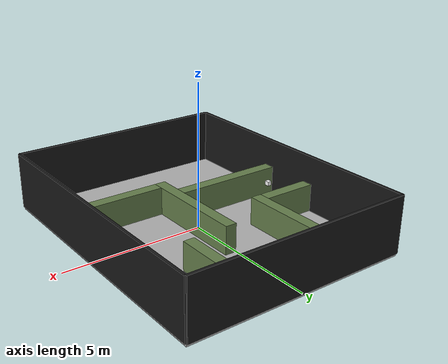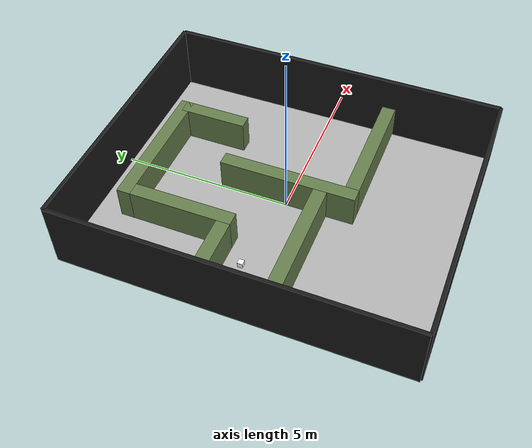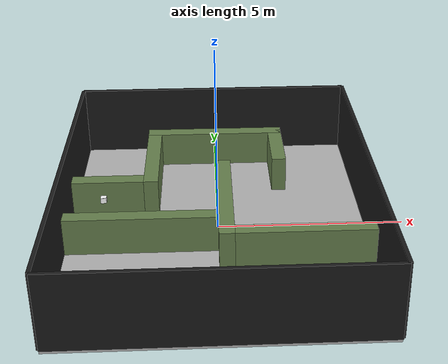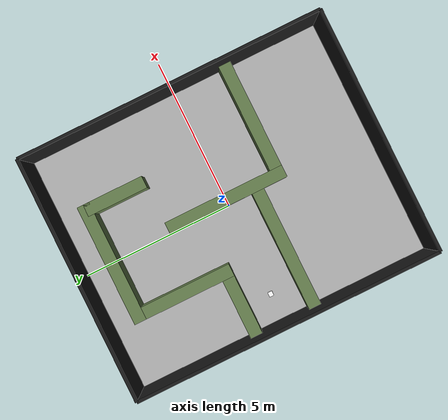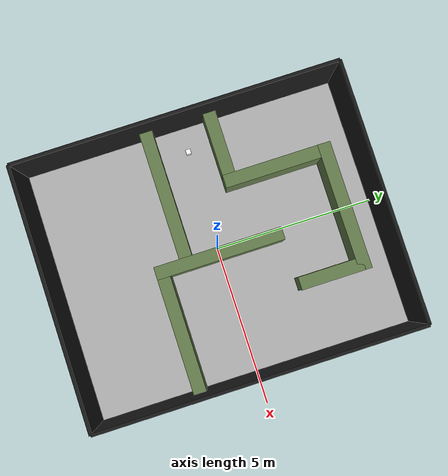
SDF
<?xml version="1.0" ?>
<sdf version="1.5">
  <world name="my_custom_world">

    <physics name='default_physics' default='0' type='ode'>
      <gravity>0 0 -9.81</gravity>
      <ode>
        <solver>
          <type>quick</type>
          <iters>10</iters>
          <sor>1.3</sor>
          <use_dynamic_moi_rescaling>0</use_dynamic_moi_rescaling>
        </solver>
        <constraints>
          <cfm>0</cfm>
          <erp>0.2</erp>
          <contact_max_correcting_vel>100</contact_max_correcting_vel>
          <contact_surface_layer>0.001</contact_surface_layer>
        </constraints>
      </ode>
      <max_step_size>0.004</max_step_size>
      <real_time_factor>1</real_time_factor>
      <real_time_update_rate>250</real_time_update_rate>
      <magnetic_field>6.0e-6 2.3e-5 -4.2e-5</magnetic_field>
    </physics>

    <light type="directional" name="sun">
      <cast_shadows>true</cast_shadows>
      <pose>0 0 10 0 0 0</pose>
      <diffuse>0.8 0.8 0.8 1</diffuse>
      <specular>0.2 0.2 0.2 1</specular>
      <attenuation>
        <range>1000</range>
        <constant>0.9</constant>
        <linear>0.01</linear>
        <quadratic>0.001</quadratic>
      </attenuation>
      <direction>0.3 0.1 -0.9</direction>
    </light>

    <model name="muro1">
      <static>true</static>
      <pose>4 0 1 0 0 0</pose>
      <link name="link">
        <collision name="collision">
          <geometry>
            <box>
              <size>0.1 10 2</size>
            </box>
          </geometry>
        </collision>
        <visual name="visual">
        <material>
          <diffuse>0.1 0.1 0.1 1</diffuse>
        </material>
          <geometry>
            <box>
              <size>0.1 10 2</size>
            </box>
          </geometry>
        </visual>
      </link>
    </model>

    <model name="muro2">
      <static>true</static>
      <pose>0 5 1 0 0 0</pose>
      <link name="link">
        <collision name="collision">
          <geometry>
            <box>
              <size>8 0.1 2</size>
            </box>
          </geometry>
        </collision>
        <visual name="visual">
        <material>
          <diffuse>0.1 0.1 0.1 1</diffuse>
        </material>
          <geometry>
            <box>
              <size>8 0.1 2</size>
            </box>
          </geometry>
        </visual>
      </link>
    </model>

    <model name="muro3">
      <static>true</static>
      <pose>-4 0 1 0 0 0</pose>
      <link name="link">
        <collision name="collision">
          <geometry>
            <box>
              <size>0.1 10 2</size>
            </box>
          </geometry>
        </collision>
        <visual name="visual">
        <material>
          <diffuse>0.1 0.1 0.1 1</diffuse>
        </material>
          <geometry>
            <box>
              <size>0.1 10 2</size>
            </box>
          </geometry>
        </visual>
      </link>
    </model>

    <model name="muro4">
      <static>true</static>
      <pose>0 -5 1 0 0 0</pose>
      <link name="link">
        <collision name="collision">
          <geometry>
            <box>
              <size>8 0.1 2</size>
            </box>
          </geometry>
        </collision>
        <visual name="visual">
        <material>
          <diffuse>0.1 0.1 0.1 1</diffuse>
        </material>
          <geometry>
            <box>
              <size>8 0.1 2</size>
            </box>
          </geometry>
        </visual>
      </link>
    </model>

    <model name="pavimento">
      <static>true</static>
      <pose>0 0 -0.05 0 0 0</pose> <link name="link">
        <collision name="collision">
          <geometry>
            <box>
              <size>8 10 0.1</size>
            </box>
          </geometry>
          <surface>
            <friction>
              <ode>
                <mu>100</mu>     <mu2>50</mu2>    </ode>
            </friction>
            <contact>
              <ode>
                <kp>1000000.0</kp> <kd>1.0</kd>       </ode>
            </contact>
          </surface>
        </collision>
        <visual name="visual">
          <material>
            <ambient>0.3 0.3 0.3 1</ambient>
            <diffuse>0.7 0.7 0.7 1</diffuse>
            <specular>0.01 0.01 0.01 1</specular>
          </material>
          <geometry>
            <box>
              <size>8 10 0.1</size>
            </box>
          </geometry>
        </visual>
      </link>
    </model>

    <model name="ostacolo_1">
      <static>true</static>
      <pose>-3 1 0.5 0 0 0</pose>
      <link name="link">
        <collision name="collision">
          <geometry>
            <box>
              <size>2 0.4 1</size>
            </box>
          </geometry>
        </collision>
        <visual name="visual">
        <material>
          <diffuse>0.4 0.5 0.3 1</diffuse>
        </material>
          <geometry>
            <box>
              <size>2 0.4 1</size>
            </box>
          </geometry>
        </visual>
      </link>
    </model>

    <model name="ostacolo_2">
      <static>true</static>
      <pose>-1.8 2.3 0.5 0 0 0</pose>
      <link name="link">
        <collision name="collision">
          <geometry>
            <box>
              <size>0.4 3 1</size>
            </box>
          </geometry>
        </collision>
        <visual name="visual">
        <material>
          <diffuse>0.4 0.5 0.3 1</diffuse>
        </material>
          <geometry>
            <box>
              <size>0.4 3 1</size>
            </box>
          </geometry>
        </visual>
      </link>
    </model>

    <model name="ostacolo_3">
      <static>true</static>
      <pose>0 4 0.5 0 0 0</pose>
      <link name="link">
        <collision name="collision">
          <geometry>
            <box>
              <size>4 0.4 1</size>
            </box>
          </geometry>
        </collision>
        <visual name="visual">
        <material>
          <diffuse>0.4 0.5 0.3 1</diffuse>
        </material>
          <geometry>
            <box>
              <size>4 0.4 1</size>
            </box>
          </geometry>
        </visual>
      </link>
    </model>

    <model name="ostacolo_4">
      <static>true</static>
      <pose>1.8 3 0.5 0 0 0</pose>
      <link name="link">
        <collision name="collision">
          <geometry>
            <box>
              <size>0.4 2 1</size>
            </box>
          </geometry>
        </collision>
        <visual name="visual">
        <material>
          <diffuse>0.4 0.5 0.3 1</diffuse>
        </material>
          <geometry>
            <box>
              <size>0.4 2 1</size>
            </box>
          </geometry>
        </visual>
      </link>
    </model>

    <model name="ostacolo_5">
      <static>true</static>
      <pose>2.2 -1.8 0.5 0 0 0</pose>
      <link name="link">
        <collision name="collision">
          <geometry>
            <box>
              <size>3.6 0.4 1</size>
            </box>
          </geometry>
        </collision>
        <visual name="visual">
        <material>
          <diffuse>0.4 0.5 0.3 1</diffuse>
        </material>
          <geometry>
            <box>
              <size>3.6 0.4 1</size>
            </box>
          </geometry>
        </visual>
      </link>
    </model>

    <model name="ostacolo_6">
      <static>true</static>
      <pose>0.2 0 0.5 0 0 0</pose>
      <link name="link">
        <collision name="collision">
          <geometry>
            <box>
              <size>0.4 4 1</size>
            </box>
          </geometry>
        </collision>
        <visual name="visual">
        <material>
          <diffuse>0.4 0.5 0.3 1</diffuse>
        </material>
          <geometry>
            <box>
              <size>0.4 4 1</size>
            </box>
          </geometry>
        </visual>
      </link>
    </model>

    <model name="ostacolo_7">
      <static>true</static>
      <pose>-2 -1 0.5 0 0 0</pose>
      <link name="link">
        <collision name="collision">
          <geometry>
            <box>
              <size>4 0.4 1</size>
            </box>
          </geometry>
        </collision>
        <visual name="visual">
        <material>
          <diffuse>0.4 0.5 0.3 1</diffuse>
        </material>
          <geometry>
            <box>
              <size>4 0.4 1</size>
            </box>
          </geometry>
        </visual>
      </link>
    </model>

<include>
  <uri>model://aruco_tags</uri>
  <name>aruco_tag</name>
  <pose>-3 0.05 0.9 0 0 0</pose>
</include>

    <!-- AR markers -->

  <plugin
    filename="gz-sim-physics-system"
    name="gz::sim::systems::Physics">
  </plugin>
  <plugin
    filename="gz-sim-user-commands-system"
    name="gz::sim::systems::UserCommands">
  </plugin>
    <plugin
    filename="gz-sim-scene-broadcaster-system"
    name="gz::sim::systems::SceneBroadcaster">
  </plugin>

  </world>
</sdf>

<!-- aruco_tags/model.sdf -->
<sdf version='1.9'>
  <model name='aruco_tags'>
    <static>false</static>
    <link name='base_link'>

      <inertial>
        <mass>1.0</mass>
        <inertia>
          <ixx>0.00375</ixx>
          <ixy>0</ixy>
          <ixz>0</ixz>
          <iyy>0.00375</iyy>
          <iyz>0</iyz>
          <izz>0.00375</izz>
        </inertia>
      </inertial>

      <collision name='collision'>
        <geometry>
          <box>
            <size>0.15 0.15 0.15</size>
          </box>
        </geometry>
      </collision>

      <visual name='cube_visual'>
        <geometry>
          <box>
            <size>0.15 0.15 0.15</size>
          </box>
        </geometry>
        <material>
          <ambient>1 1 1 1</ambient>
          <diffuse>1 1 1 1</diffuse>
          <specular>0.5 0.5 0.5 1</specular>
        </material>
      </visual>

      <visual name='tag_visual'>
        <pose>0 0 0.076 0 0 0</pose>
        <geometry>
          <box>
            <size>0.149 0.149 0.001</size>
          </box>
        </geometry>
        <material>
          <ambient>1 1 1 1</ambient>
          <diffuse>1 1 1 1</diffuse>
          <specular>0 0 0 1</specular>
          <pbr>
            <metal>
              <albedo_map>model://aruco_tags/arucotag.png</albedo_map>
            </metal>
          </pbr>
        </material>
      </visual>
    </link>
  </model>
</sdf>
